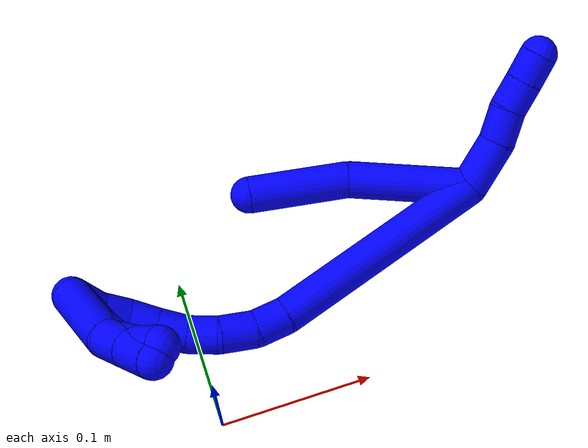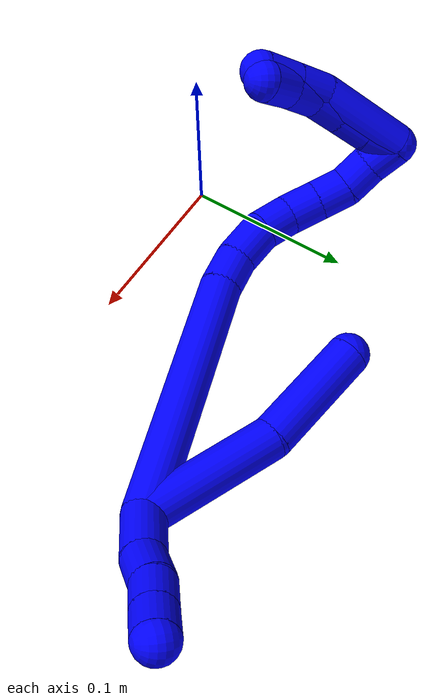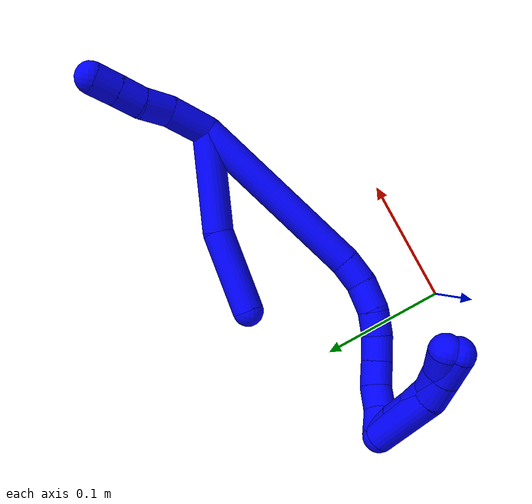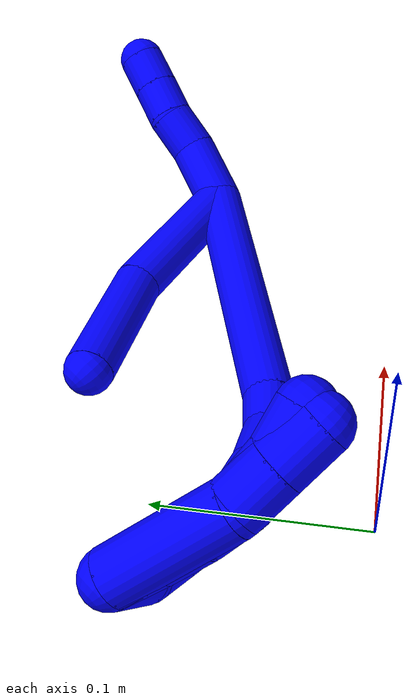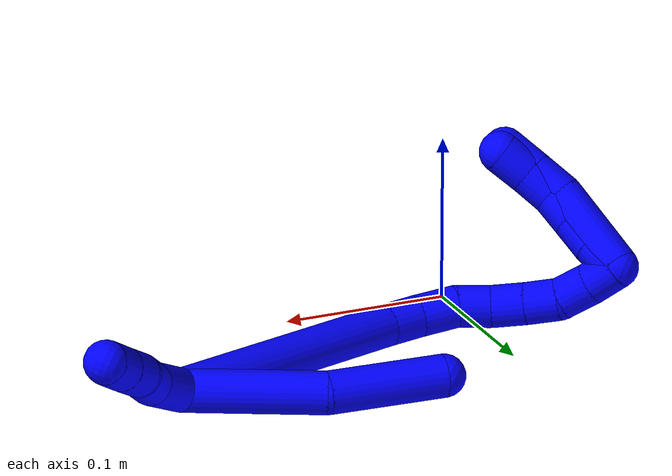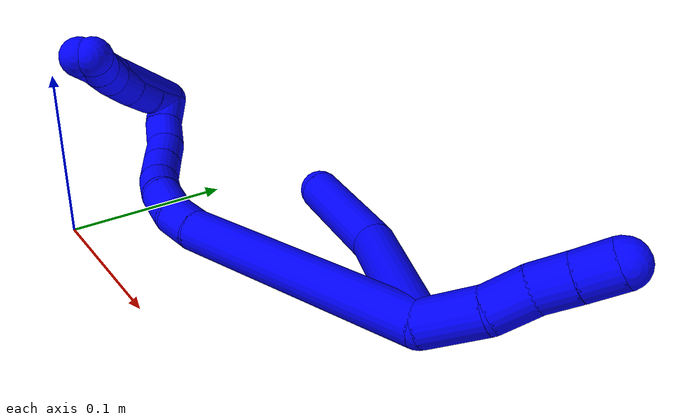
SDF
<sdf version="1.7">
 <world name="default">
  <model name="1">
   <static>0</static>
   <link name="1">
    <collision name="collision-cylinder-e_1_2_8">
     <pose>-0.006073 -0.015687 0.03742 0.396972 -0.148562 -0.029934</pose>
     <geometry><cylinder><radius>0.0125</radius><length>0.082054</length></cylinder></geometry>
     <surface>
      <friction><ode><mu>1.16</mu><mu2>1.16</mu2><slip1>0</slip1><slip2>0</slip2></ode></friction>
      <contact><ode><kp>1e+06</kp><kd>1</kd><max_vel>0</max_vel><min_depth>0.001</min_depth></ode></contact>
     </surface>
    </collision>
    <visual name="visual-cylinder-e_1_2_8">
     <pose>-0.006073 -0.015687 0.03742 0.396972 -0.148562 -0.029934</pose>
     <geometry><cylinder><radius>0.0125</radius><length>0.082054</length></cylinder></geometry>
     <material><ambient>0 0 1 1</ambient></material>
    </visual>
    <collision name="collision-cylinder-e_2_8_6">
     <pose>-0.024246 -0.048377 0.101648 0.565184 -0.364179 -0.106827</pose>
     <geometry><cylinder><radius>0.0125</radius><length>0.067946</length></cylinder></geometry>
     <surface>
      <friction><ode><mu>1.16</mu><mu2>1.16</mu2><slip1>0</slip1><slip2>0</slip2></ode></friction>
      <contact><ode><kp>1e+06</kp><kd>1</kd><max_vel>0</max_vel><min_depth>0.001</min_depth></ode></contact>
     </surface>
    </collision>
    <visual name="visual-cylinder-e_2_8_6">
     <pose>-0.024246 -0.048377 0.101648 0.565184 -0.364179 -0.106827</pose>
     <geometry><cylinder><radius>0.0125</radius><length>0.067946</length></cylinder></geometry>
     <material><ambient>0 0 1 1</ambient></material>
    </visual>
    <collision name="collision-cylinder-e_1_2_9">
     <pose>0.016643 0.0004 -0.006115 -3.0763 1.21799 -3.04801</pose>
     <geometry><cylinder><radius>0.0125</radius><length>0.035471</length></cylinder></geometry>
     <surface>
      <friction><ode><mu>1.16</mu><mu2>1.16</mu2><slip1>0</slip1><slip2>0</slip2></ode></friction>
      <contact><ode><kp>1e+06</kp><kd>1</kd><max_vel>0</max_vel><min_depth>0.001</min_depth></ode></contact>
     </surface>
    </collision>
    <visual name="visual-cylinder-e_1_2_9">
     <pose>0.016643 0.0004 -0.006115 -3.0763 1.21799 -3.04801</pose>
     <geometry><cylinder><radius>0.0125</radius><length>0.035471</length></cylinder></geometry>
     <material><ambient>0 0 1 1</ambient></material>
    </visual>
    <collision name="collision-cylinder-e_2_9_10">
     <pose>0.04472 -0.000945 -0.014169 2.40873 1.34651 2.24465</pose>
     <geometry><cylinder><radius>0.0125</radius><length>0.023456</length></cylinder></geometry>
     <surface>
      <friction><ode><mu>1.16</mu><mu2>1.16</mu2><slip1>0</slip1><slip2>0</slip2></ode></friction>
      <contact><ode><kp>1e+06</kp><kd>1</kd><max_vel>0</max_vel><min_depth>0.001</min_depth></ode></contact>
     </surface>
    </collision>
    <visual name="visual-cylinder-e_2_9_10">
     <pose>0.04472 -0.000945 -0.014169 2.40873 1.34651 2.24465</pose>
     <geometry><cylinder><radius>0.0125</radius><length>0.023456</length></cylinder></geometry>
     <material><ambient>0 0 1 1</ambient></material>
    </visual>
    <collision name="collision-cylinder-e_3_10_11">
     <pose>0.06588 -0.003092 -0.019617 3.02769 1.22244 2.97922</pose>
     <geometry><cylinder><radius>0.0125</radius><length>0.020693</length></cylinder></geometry>
     <surface>
      <friction><ode><mu>1.16</mu><mu2>1.16</mu2><slip1>0</slip1><slip2>0</slip2></ode></friction>
      <contact><ode><kp>1e+06</kp><kd>1</kd><max_vel>0</max_vel><min_depth>0.001</min_depth></ode></contact>
     </surface>
    </collision>
    <visual name="visual-cylinder-e_3_10_11">
     <pose>0.06588 -0.003092 -0.019617 3.02769 1.22244 2.97922</pose>
     <geometry><cylinder><radius>0.0125</radius><length>0.020693</length></cylinder></geometry>
     <material><ambient>0 0 1 1</ambient></material>
    </visual>
    <collision name="collision-cylinder-e_4_11_5">
     <pose>0.085227 -0.00409 -0.026426 2.9629 1.23535 2.89071</pose>
     <geometry><cylinder><radius>0.0125</radius><length>0.02038</length></cylinder></geometry>
     <surface>
      <friction><ode><mu>1.16</mu><mu2>1.16</mu2><slip1>0</slip1><slip2>0</slip2></ode></friction>
      <contact><ode><kp>1e+06</kp><kd>1</kd><max_vel>0</max_vel><min_depth>0.001</min_depth></ode></contact>
     </surface>
    </collision>
    <visual name="visual-cylinder-e_4_11_5">
     <pose>0.085227 -0.00409 -0.026426 2.9629 1.23535 2.89071</pose>
     <geometry><cylinder><radius>0.0125</radius><length>0.02038</length></cylinder></geometry>
     <material><ambient>0 0 1 1</ambient></material>
    </visual>
    <collision name="collision-cylinder-e_1_2_12">
     <pose>-0.054061 -0.037152 0.039281 0.757547 -0.785342 -0.326742</pose>
     <geometry><cylinder><radius>0.0125</radius><length>0.152917</length></cylinder></geometry>
     <surface>
      <friction><ode><mu>1.16</mu><mu2>1.16</mu2><slip1>0</slip1><slip2>0</slip2></ode></friction>
      <contact><ode><kp>1e+06</kp><kd>1</kd><max_vel>0</max_vel><min_depth>0.001</min_depth></ode></contact>
     </surface>
    </collision>
    <visual name="visual-cylinder-e_1_2_12">
     <pose>-0.054061 -0.037152 0.039281 0.757547 -0.785342 -0.326742</pose>
     <geometry><cylinder><radius>0.0125</radius><length>0.152917</length></cylinder></geometry>
     <material><ambient>0 0 1 1</ambient></material>
    </visual>
    <collision name="collision-cylinder-e_2_12_13">
     <pose>-0.114299 -0.080201 0.085305 0.718607 -0.603645 -0.232822</pose>
     <geometry><cylinder><radius>0.0125</radius><length>0.021762</length></cylinder></geometry>
     <surface>
      <friction><ode><mu>1.16</mu><mu2>1.16</mu2><slip1>0</slip1><slip2>0</slip2></ode></friction>
      <contact><ode><kp>1e+06</kp><kd>1</kd><max_vel>0</max_vel><min_depth>0.001</min_depth></ode></contact>
     </surface>
    </collision>
    <visual name="visual-cylinder-e_2_12_13">
     <pose>-0.114299 -0.080201 0.085305 0.718607 -0.603645 -0.232822</pose>
     <geometry><cylinder><radius>0.0125</radius><length>0.021762</length></cylinder></geometry>
     <material><ambient>0 0 1 1</ambient></material>
    </visual>
    <collision name="collision-cylinder-e_3_13_14">
     <pose>-0.124503 -0.093139 0.100866 0.673788 -0.342822 -0.121114</pose>
     <geometry><cylinder><radius>0.0125</radius><length>0.023962</length></cylinder></geometry>
     <surface>
      <friction><ode><mu>1.16</mu><mu2>1.16</mu2><slip1>0</slip1><slip2>0</slip2></ode></friction>
      <contact><ode><kp>1e+06</kp><kd>1</kd><max_vel>0</max_vel><min_depth>0.001</min_depth></ode></contact>
     </surface>
    </collision>
    <visual name="visual-cylinder-e_3_13_14">
     <pose>-0.124503 -0.093139 0.100866 0.673788 -0.342822 -0.121114</pose>
     <geometry><cylinder><radius>0.0125</radius><length>0.023962</length></cylinder></geometry>
     <material><ambient>0 0 1 1</ambient></material>
    </visual>
    <collision name="collision-cylinder-e_4_14_15">
     <pose>-0.130581 -0.104159 0.118845 0.40976 -0.202529 -0.042223</pose>
     <geometry><cylinder><radius>0.0125</radius><length>0.020393</length></cylinder></geometry>
     <surface>
      <friction><ode><mu>1.16</mu><mu2>1.16</mu2><slip1>0</slip1><slip2>0</slip2></ode></friction>
      <contact><ode><kp>1e+06</kp><kd>1</kd><max_vel>0</max_vel><min_depth>0.001</min_depth></ode></contact>
     </surface>
    </collision>
    <visual name="visual-cylinder-e_4_14_15">
     <pose>-0.130581 -0.104159 0.118845 0.40976 -0.202529 -0.042223</pose>
     <geometry><cylinder><radius>0.0125</radius><length>0.020393</length></cylinder></geometry>
     <material><ambient>0 0 1 1</ambient></material>
    </visual>
    <collision name="collision-cylinder-e_5_15_16">
     <pose>-0.132158 -0.113063 0.137091 0.496801 0.045885 0.01164</pose>
     <geometry><cylinder><radius>0.0125</radius><length>0.020689</length></cylinder></geometry>
     <surface>
      <friction><ode><mu>1.16</mu><mu2>1.16</mu2><slip1>0</slip1><slip2>0</slip2></ode></friction>
      <contact><ode><kp>1e+06</kp><kd>1</kd><max_vel>0</max_vel><min_depth>0.001</min_depth></ode></contact>
     </surface>
    </collision>
    <visual name="visual-cylinder-e_5_15_16">
     <pose>-0.132158 -0.113063 0.137091 0.496801 0.045885 0.01164</pose>
     <geometry><cylinder><radius>0.0125</radius><length>0.020689</length></cylinder></geometry>
     <material><ambient>0 0 1 1</ambient></material>
    </visual>
    <collision name="collision-cylinder-e_6_16_17">
     <pose>-0.130665 -0.123132 0.154729 0.541399 0.101675 0.028239</pose>
     <geometry><cylinder><radius>0.0125</radius><length>0.020066</length></cylinder></geometry>
     <surface>
      <friction><ode><mu>1.16</mu><mu2>1.16</mu2><slip1>0</slip1><slip2>0</slip2></ode></friction>
      <contact><ode><kp>1e+06</kp><kd>1</kd><max_vel>0</max_vel><min_depth>0.001</min_depth></ode></contact>
     </surface>
    </collision>
    <visual name="visual-cylinder-e_6_16_17">
     <pose>-0.130665 -0.123132 0.154729 0.541399 0.101675 0.028239</pose>
     <geometry><cylinder><radius>0.0125</radius><length>0.020066</length></cylinder></geometry>
     <material><ambient>0 0 1 1</ambient></material>
    </visual>
    <collision name="collision-cylinder-e_7_17_18">
     <pose>-0.129018 -0.135996 0.16967 0.879624 0.062672 0.029498</pose>
     <geometry><cylinder><radius>0.0125</radius><length>0.02008</length></cylinder></geometry>
     <surface>
      <friction><ode><mu>1.16</mu><mu2>1.16</mu2><slip1>0</slip1><slip2>0</slip2></ode></friction>
      <contact><ode><kp>1e+06</kp><kd>1</kd><max_vel>0</max_vel><min_depth>0.001</min_depth></ode></contact>
     </surface>
    </collision>
    <visual name="visual-cylinder-e_7_17_18">
     <pose>-0.129018 -0.135996 0.16967 0.879624 0.062672 0.029498</pose>
     <geometry><cylinder><radius>0.0125</radius><length>0.02008</length></cylinder></geometry>
     <material><ambient>0 0 1 1</ambient></material>
    </visual>
    <collision name="collision-cylinder-e_8_18_1">
     <pose>-0.125007 -0.151423 0.181578 0.949136 0.342673 0.177317</pose>
     <geometry><cylinder><radius>0.0125</radius><length>0.020132</length></cylinder></geometry>
     <surface>
      <friction><ode><mu>1.16</mu><mu2>1.16</mu2><slip1>0</slip1><slip2>0</slip2></ode></friction>
      <contact><ode><kp>1e+06</kp><kd>1</kd><max_vel>0</max_vel><min_depth>0.001</min_depth></ode></contact>
     </surface>
    </collision>
    <visual name="visual-cylinder-e_8_18_1">
     <pose>-0.125007 -0.151423 0.181578 0.949136 0.342673 0.177317</pose>
     <geometry><cylinder><radius>0.0125</radius><length>0.020132</length></cylinder></geometry>
     <material><ambient>0 0 1 1</ambient></material>
    </visual>
    <collision name="collision-cylinder-e_1_1_19">
     <pose>-0.129523 -0.171607 0.163161 2.66112 -0.284653 -1.05857</pose>
     <geometry><cylinder><radius>0.0125</radius><length>0.056253</length></cylinder></geometry>
     <surface>
      <friction><ode><mu>1.16</mu><mu2>1.16</mu2><slip1>0</slip1><slip2>0</slip2></ode></friction>
      <contact><ode><kp>1e+06</kp><kd>1</kd><max_vel>0</max_vel><min_depth>0.001</min_depth></ode></contact>
     </surface>
    </collision>
    <visual name="visual-cylinder-e_1_1_19">
     <pose>-0.129523 -0.171607 0.163161 2.66112 -0.284653 -1.05857</pose>
     <geometry><cylinder><radius>0.0125</radius><length>0.056253</length></cylinder></geometry>
     <material><ambient>0 0 1 1</ambient></material>
    </visual>
    <collision name="collision-cylinder-e_2_19_20">
     <pose>-0.138008 -0.187035 0.128966 2.86144 -0.054886 -0.384545</pose>
     <geometry><cylinder><radius>0.0125</radius><length>0.021379</length></cylinder></geometry>
     <surface>
      <friction><ode><mu>1.16</mu><mu2>1.16</mu2><slip1>0</slip1><slip2>0</slip2></ode></friction>
      <contact><ode><kp>1e+06</kp><kd>1</kd><max_vel>0</max_vel><min_depth>0.001</min_depth></ode></contact>
     </surface>
    </collision>
    <visual name="visual-cylinder-e_2_19_20">
     <pose>-0.138008 -0.187035 0.128966 2.86144 -0.054886 -0.384545</pose>
     <geometry><cylinder><radius>0.0125</radius><length>0.021379</length></cylinder></geometry>
     <material><ambient>0 0 1 1</ambient></material>
    </visual>
    <collision name="collision-cylinder-e_3_20_4">
     <pose>-0.139199 -0.192984 0.107951 2.86991 -0.054074 -0.390666</pose>
     <geometry><cylinder><radius>0.0125</radius><length>0.022368</length></cylinder></geometry>
     <surface>
      <friction><ode><mu>1.16</mu><mu2>1.16</mu2><slip1>0</slip1><slip2>0</slip2></ode></friction>
      <contact><ode><kp>1e+06</kp><kd>1</kd><max_vel>0</max_vel><min_depth>0.001</min_depth></ode></contact>
     </surface>
    </collision>
    <visual name="visual-cylinder-e_3_20_4">
     <pose>-0.139199 -0.192984 0.107951 2.86991 -0.054074 -0.390666</pose>
     <geometry><cylinder><radius>0.0125</radius><length>0.022368</length></cylinder></geometry>
     <material><ambient>0 0 1 1</ambient></material>
    </visual>
    <collision name="collision-cylinder-e_1_1_21">
     <pose>-0.124984 -0.162024 0.178136 2.82934 -0.342575 -1.665</pose>
     <geometry><cylinder><radius>0.0125</radius><length>0.02</length></cylinder></geometry>
     <surface>
      <friction><ode><mu>1.16</mu><mu2>1.16</mu2><slip1>0</slip1><slip2>0</slip2></ode></friction>
      <contact><ode><kp>1e+06</kp><kd>1</kd><max_vel>0</max_vel><min_depth>0.001</min_depth></ode></contact>
     </surface>
    </collision>
    <visual name="visual-cylinder-e_1_1_21">
     <pose>-0.124984 -0.162024 0.178136 2.82934 -0.342575 -1.665</pose>
     <geometry><cylinder><radius>0.0125</radius><length>0.02</length></cylinder></geometry>
     <material><ambient>0 0 1 1</ambient></material>
    </visual>
    <collision name="collision-cylinder-e_2_21_22">
     <pose>-0.131252 -0.169176 0.160605 2.68028 -0.295136 -1.12865</pose>
     <geometry><cylinder><radius>0.0125</radius><length>0.02</length></cylinder></geometry>
     <surface>
      <friction><ode><mu>1.16</mu><mu2>1.16</mu2><slip1>0</slip1><slip2>0</slip2></ode></friction>
      <contact><ode><kp>1e+06</kp><kd>1</kd><max_vel>0</max_vel><min_depth>0.001</min_depth></ode></contact>
     </surface>
    </collision>
    <visual name="visual-cylinder-e_2_21_22">
     <pose>-0.131252 -0.169176 0.160605 2.68028 -0.295136 -1.12865</pose>
     <geometry><cylinder><radius>0.0125</radius><length>0.02</length></cylinder></geometry>
     <material><ambient>0 0 1 1</ambient></material>
    </visual>
    <collision name="collision-cylinder-e_3_22_23">
     <pose>-0.136032 -0.177797 0.143236 2.68145 -0.188268 -0.766356</pose>
     <geometry><cylinder><radius>0.0125</radius><length>0.02</length></cylinder></geometry>
     <surface>
      <friction><ode><mu>1.16</mu><mu2>1.16</mu2><slip1>0</slip1><slip2>0</slip2></ode></friction>
      <contact><ode><kp>1e+06</kp><kd>1</kd><max_vel>0</max_vel><min_depth>0.001</min_depth></ode></contact>
     </surface>
    </collision>
    <visual name="visual-cylinder-e_3_22_23">
     <pose>-0.136032 -0.177797 0.143236 2.68145 -0.188268 -0.766356</pose>
     <geometry><cylinder><radius>0.0125</radius><length>0.02</length></cylinder></geometry>
     <material><ambient>0 0 1 1</ambient></material>
    </visual>
    <collision name="collision-cylinder-e_4_23_24">
     <pose>-0.13733 -0.185028 0.124872 2.85013 0.057405 0.386344</pose>
     <geometry><cylinder><radius>0.0125</radius><length>0.02</length></cylinder></geometry>
     <surface>
      <friction><ode><mu>1.16</mu><mu2>1.16</mu2><slip1>0</slip1><slip2>0</slip2></ode></friction>
      <contact><ode><kp>1e+06</kp><kd>1</kd><max_vel>0</max_vel><min_depth>0.001</min_depth></ode></contact>
     </surface>
    </collision>
    <visual name="visual-cylinder-e_4_23_24">
     <pose>-0.13733 -0.185028 0.124872 2.85013 0.057405 0.386344</pose>
     <geometry><cylinder><radius>0.0125</radius><length>0.02</length></cylinder></geometry>
     <material><ambient>0 0 1 1</ambient></material>
    </visual>
    <collision name="collision-cylinder-e_5_24_3">
     <pose>-0.13437 -0.190384 0.105922 2.88266 0.240957 1.49817</pose>
     <geometry><cylinder><radius>0.0125</radius><length>0.02</length></cylinder></geometry>
     <surface>
      <friction><ode><mu>1.16</mu><mu2>1.16</mu2><slip1>0</slip1><slip2>0</slip2></ode></friction>
      <contact><ode><kp>1e+06</kp><kd>1</kd><max_vel>0</max_vel><min_depth>0.001</min_depth></ode></contact>
     </surface>
    </collision>
    <visual name="visual-cylinder-e_5_24_3">
     <pose>-0.13437 -0.190384 0.105922 2.88266 0.240957 1.49817</pose>
     <geometry><cylinder><radius>0.0125</radius><length>0.02</length></cylinder></geometry>
     <material><ambient>0 0 1 1</ambient></material>
    </visual>
    <collision name="collision-sphere-3">
     <pose>-0.131983 -0.19287 0.096535 0 -0 0</pose>
     <geometry><sphere><radius>0.0125</radius></sphere></geometry>
     <surface>
      <friction><ode><mu>1.16</mu><mu2>1.16</mu2><slip1>0</slip1><slip2>0</slip2></ode></friction>
      <contact><ode><kp>1e+06</kp><kd>1</kd><max_vel>0</max_vel><min_depth>0.001</min_depth></ode></contact>
     </surface>
    </collision>
    <visual name="visual-sphere-3">
     <pose>-0.131983 -0.19287 0.096535 0 -0 0</pose>
     <geometry><sphere><radius>0.0125</radius></sphere></geometry>
     <material><ambient>0 0 1 1</ambient></material>
    </visual>
    <collision name="collision-sphere-24">
     <pose>-0.136756 -0.187897 0.11531 0 -0 0</pose>
     <geometry><sphere><radius>0.0125</radius></sphere></geometry>
     <surface>
      <friction><ode><mu>1.16</mu><mu2>1.16</mu2><slip1>0</slip1><slip2>0</slip2></ode></friction>
      <contact><ode><kp>1e+06</kp><kd>1</kd><max_vel>0</max_vel><min_depth>0.001</min_depth></ode></contact>
     </surface>
    </collision>
    <visual name="visual-sphere-24">
     <pose>-0.136756 -0.187897 0.11531 0 -0 0</pose>
     <geometry><sphere><radius>0.0125</radius></sphere></geometry>
     <material><ambient>0 0 1 1</ambient></material>
    </visual>
    <collision name="collision-sphere-23">
     <pose>-0.137904 -0.182159 0.134435 0 -0 0</pose>
     <geometry><sphere><radius>0.0125</radius></sphere></geometry>
     <surface>
      <friction><ode><mu>1.16</mu><mu2>1.16</mu2><slip1>0</slip1><slip2>0</slip2></ode></friction>
      <contact><ode><kp>1e+06</kp><kd>1</kd><max_vel>0</max_vel><min_depth>0.001</min_depth></ode></contact>
     </surface>
    </collision>
    <visual name="visual-sphere-23">
     <pose>-0.137904 -0.182159 0.134435 0 -0 0</pose>
     <geometry><sphere><radius>0.0125</radius></sphere></geometry>
     <material><ambient>0 0 1 1</ambient></material>
    </visual>
    <collision name="collision-sphere-22">
     <pose>-0.13416 -0.173435 0.152038 0 -0 0</pose>
     <geometry><sphere><radius>0.0125</radius></sphere></geometry>
     <surface>
      <friction><ode><mu>1.16</mu><mu2>1.16</mu2><slip1>0</slip1><slip2>0</slip2></ode></friction>
      <contact><ode><kp>1e+06</kp><kd>1</kd><max_vel>0</max_vel><min_depth>0.001</min_depth></ode></contact>
     </surface>
    </collision>
    <visual name="visual-sphere-22">
     <pose>-0.13416 -0.173435 0.152038 0 -0 0</pose>
     <geometry><sphere><radius>0.0125</radius></sphere></geometry>
     <material><ambient>0 0 1 1</ambient></material>
    </visual>
    <collision name="collision-sphere-21">
     <pose>-0.128343 -0.164917 0.169173 0 -0 0</pose>
     <geometry><sphere><radius>0.0125</radius></sphere></geometry>
     <surface>
      <friction><ode><mu>1.16</mu><mu2>1.16</mu2><slip1>0</slip1><slip2>0</slip2></ode></friction>
      <contact><ode><kp>1e+06</kp><kd>1</kd><max_vel>0</max_vel><min_depth>0.001</min_depth></ode></contact>
     </surface>
    </collision>
    <visual name="visual-sphere-21">
     <pose>-0.128343 -0.164917 0.169173 0 -0 0</pose>
     <geometry><sphere><radius>0.0125</radius></sphere></geometry>
     <material><ambient>0 0 1 1</ambient></material>
    </visual>
    <collision name="collision-sphere-4">
     <pose>-0.139804 -0.19598 0.097193 0 -0 0</pose>
     <geometry><sphere><radius>0.0125</radius></sphere></geometry>
     <surface>
      <friction><ode><mu>1.16</mu><mu2>1.16</mu2><slip1>0</slip1><slip2>0</slip2></ode></friction>
      <contact><ode><kp>1e+06</kp><kd>1</kd><max_vel>0</max_vel><min_depth>0.001</min_depth></ode></contact>
     </surface>
    </collision>
    <visual name="visual-sphere-4">
     <pose>-0.139804 -0.19598 0.097193 0 -0 0</pose>
     <geometry><sphere><radius>0.0125</radius></sphere></geometry>
     <material><ambient>0 0 1 1</ambient></material>
    </visual>
    <collision name="collision-sphere-20">
     <pose>-0.138595 -0.189987 0.118709 0 -0 0</pose>
     <geometry><sphere><radius>0.0125</radius></sphere></geometry>
     <surface>
      <friction><ode><mu>1.16</mu><mu2>1.16</mu2><slip1>0</slip1><slip2>0</slip2></ode></friction>
      <contact><ode><kp>1e+06</kp><kd>1</kd><max_vel>0</max_vel><min_depth>0.001</min_depth></ode></contact>
     </surface>
    </collision>
    <visual name="visual-sphere-20">
     <pose>-0.138595 -0.189987 0.118709 0 -0 0</pose>
     <geometry><sphere><radius>0.0125</radius></sphere></geometry>
     <material><ambient>0 0 1 1</ambient></material>
    </visual>
    <collision name="collision-sphere-11">
     <pose>0.075605 -0.003493 -0.023125 0 -0 0</pose>
     <geometry><sphere><radius>0.0125</radius></sphere></geometry>
     <surface>
      <friction><ode><mu>1.16</mu><mu2>1.16</mu2><slip1>0</slip1><slip2>0</slip2></ode></friction>
      <contact><ode><kp>1e+06</kp><kd>1</kd><max_vel>0</max_vel><min_depth>0.001</min_depth></ode></contact>
     </surface>
    </collision>
    <visual name="visual-sphere-11">
     <pose>0.075605 -0.003493 -0.023125 0 -0 0</pose>
     <geometry><sphere><radius>0.0125</radius></sphere></geometry>
     <material><ambient>0 0 1 1</ambient></material>
    </visual>
    <collision name="collision-sphere-10">
     <pose>0.056155 -0.002691 -0.016108 0 -0 0</pose>
     <geometry><sphere><radius>0.0125</radius></sphere></geometry>
     <surface>
      <friction><ode><mu>1.16</mu><mu2>1.16</mu2><slip1>0</slip1><slip2>0</slip2></ode></friction>
      <contact><ode><kp>1e+06</kp><kd>1</kd><max_vel>0</max_vel><min_depth>0.001</min_depth></ode></contact>
     </surface>
    </collision>
    <visual name="visual-sphere-10">
     <pose>0.056155 -0.002691 -0.016108 0 -0 0</pose>
     <geometry><sphere><radius>0.0125</radius></sphere></geometry>
     <material><ambient>0 0 1 1</ambient></material>
    </visual>
    <collision name="collision-sphere-6">
     <pose>-0.036347 -0.065378 0.128456 0 -0 0</pose>
     <geometry><sphere><radius>0.0125</radius></sphere></geometry>
     <surface>
      <friction><ode><mu>1.16</mu><mu2>1.16</mu2><slip1>0</slip1><slip2>0</slip2></ode></friction>
      <contact><ode><kp>1e+06</kp><kd>1</kd><max_vel>0</max_vel><min_depth>0.001</min_depth></ode></contact>
     </surface>
    </collision>
    <visual name="visual-sphere-6">
     <pose>-0.036347 -0.065378 0.128456 0 -0 0</pose>
     <geometry><sphere><radius>0.0125</radius></sphere></geometry>
     <material><ambient>0 0 1 1</ambient></material>
    </visual>
    <collision name="collision-sphere-9">
     <pose>0.033286 0.0008 -0.01223 0 -0 0</pose>
     <geometry><sphere><radius>0.0125</radius></sphere></geometry>
     <surface>
      <friction><ode><mu>1.16</mu><mu2>1.16</mu2><slip1>0</slip1><slip2>0</slip2></ode></friction>
      <contact><ode><kp>1e+06</kp><kd>1</kd><max_vel>0</max_vel><min_depth>0.001</min_depth></ode></contact>
     </surface>
    </collision>
    <visual name="visual-sphere-9">
     <pose>0.033286 0.0008 -0.01223 0 -0 0</pose>
     <geometry><sphere><radius>0.0125</radius></sphere></geometry>
     <material><ambient>0 0 1 1</ambient></material>
    </visual>
    <collision name="collision-sphere-2">
     <geometry><sphere><radius>0.0125</radius></sphere></geometry>
     <surface>
      <friction><ode><mu>1.16</mu><mu2>1.16</mu2><slip1>0</slip1><slip2>0</slip2></ode></friction>
      <contact><ode><kp>1e+06</kp><kd>1</kd><max_vel>0</max_vel><min_depth>0.001</min_depth></ode></contact>
     </surface>
    </collision>
    <visual name="visual-sphere-2">
     <geometry><sphere><radius>0.0125</radius></sphere></geometry>
     <material><ambient>0 0 1 1</ambient></material>
    </visual>
    <collision name="collision-sphere-19">
     <pose>-0.137422 -0.184084 0.139223 0 -0 0</pose>
     <geometry><sphere><radius>0.0125</radius></sphere></geometry>
     <surface>
      <friction><ode><mu>1.16</mu><mu2>1.16</mu2><slip1>0</slip1><slip2>0</slip2></ode></friction>
      <contact><ode><kp>1e+06</kp><kd>1</kd><max_vel>0</max_vel><min_depth>0.001</min_depth></ode></contact>
     </surface>
    </collision>
    <visual name="visual-sphere-19">
     <pose>-0.137422 -0.184084 0.139223 0 -0 0</pose>
     <geometry><sphere><radius>0.0125</radius></sphere></geometry>
     <material><ambient>0 0 1 1</ambient></material>
    </visual>
    <collision name="collision-sphere-8">
     <pose>-0.012145 -0.031375 0.074839 0 -0 0</pose>
     <geometry><sphere><radius>0.0125</radius></sphere></geometry>
     <surface>
      <friction><ode><mu>1.16</mu><mu2>1.16</mu2><slip1>0</slip1><slip2>0</slip2></ode></friction>
      <contact><ode><kp>1e+06</kp><kd>1</kd><max_vel>0</max_vel><min_depth>0.001</min_depth></ode></contact>
     </surface>
    </collision>
    <visual name="visual-sphere-8">
     <pose>-0.012145 -0.031375 0.074839 0 -0 0</pose>
     <geometry><sphere><radius>0.0125</radius></sphere></geometry>
     <material><ambient>0 0 1 1</ambient></material>
    </visual>
    <collision name="collision-sphere-5">
     <pose>0.094849 -0.004686 -0.029728 0 -0 0</pose>
     <geometry><sphere><radius>0.0125</radius></sphere></geometry>
     <surface>
      <friction><ode><mu>1.16</mu><mu2>1.16</mu2><slip1>0</slip1><slip2>0</slip2></ode></friction>
      <contact><ode><kp>1e+06</kp><kd>1</kd><max_vel>0</max_vel><min_depth>0.001</min_depth></ode></contact>
     </surface>
    </collision>
    <visual name="visual-sphere-5">
     <pose>0.094849 -0.004686 -0.029728 0 -0 0</pose>
     <geometry><sphere><radius>0.0125</radius></sphere></geometry>
     <material><ambient>0 0 1 1</ambient></material>
    </visual>
    <collision name="collision-sphere-12">
     <pose>-0.108123 -0.074304 0.078563 0 -0 0</pose>
     <geometry><sphere><radius>0.0125</radius></sphere></geometry>
     <surface>
      <friction><ode><mu>1.16</mu><mu2>1.16</mu2><slip1>0</slip1><slip2>0</slip2></ode></friction>
      <contact><ode><kp>1e+06</kp><kd>1</kd><max_vel>0</max_vel><min_depth>0.001</min_depth></ode></contact>
     </surface>
    </collision>
    <visual name="visual-sphere-12">
     <pose>-0.108123 -0.074304 0.078563 0 -0 0</pose>
     <geometry><sphere><radius>0.0125</radius></sphere></geometry>
     <material><ambient>0 0 1 1</ambient></material>
    </visual>
    <collision name="collision-sphere-13">
     <pose>-0.120476 -0.086098 0.092048 0 -0 0</pose>
     <geometry><sphere><radius>0.0125</radius></sphere></geometry>
     <surface>
      <friction><ode><mu>1.16</mu><mu2>1.16</mu2><slip1>0</slip1><slip2>0</slip2></ode></friction>
      <contact><ode><kp>1e+06</kp><kd>1</kd><max_vel>0</max_vel><min_depth>0.001</min_depth></ode></contact>
     </surface>
    </collision>
    <visual name="visual-sphere-13">
     <pose>-0.120476 -0.086098 0.092048 0 -0 0</pose>
     <geometry><sphere><radius>0.0125</radius></sphere></geometry>
     <material><ambient>0 0 1 1</ambient></material>
    </visual>
    <collision name="collision-sphere-14">
     <pose>-0.12853 -0.10018 0.109684 0 -0 0</pose>
     <geometry><sphere><radius>0.0125</radius></sphere></geometry>
     <surface>
      <friction><ode><mu>1.16</mu><mu2>1.16</mu2><slip1>0</slip1><slip2>0</slip2></ode></friction>
      <contact><ode><kp>1e+06</kp><kd>1</kd><max_vel>0</max_vel><min_depth>0.001</min_depth></ode></contact>
     </surface>
    </collision>
    <visual name="visual-sphere-14">
     <pose>-0.12853 -0.10018 0.109684 0 -0 0</pose>
     <geometry><sphere><radius>0.0125</radius></sphere></geometry>
     <material><ambient>0 0 1 1</ambient></material>
    </visual>
    <collision name="collision-sphere-15">
     <pose>-0.132632 -0.108138 0.128006 0 -0 0</pose>
     <geometry><sphere><radius>0.0125</radius></sphere></geometry>
     <surface>
      <friction><ode><mu>1.16</mu><mu2>1.16</mu2><slip1>0</slip1><slip2>0</slip2></ode></friction>
      <contact><ode><kp>1e+06</kp><kd>1</kd><max_vel>0</max_vel><min_depth>0.001</min_depth></ode></contact>
     </surface>
    </collision>
    <visual name="visual-sphere-15">
     <pose>-0.132632 -0.108138 0.128006 0 -0 0</pose>
     <geometry><sphere><radius>0.0125</radius></sphere></geometry>
     <material><ambient>0 0 1 1</ambient></material>
    </visual>
    <collision name="collision-sphere-16">
     <pose>-0.131683 -0.117988 0.146175 0 -0 0</pose>
     <geometry><sphere><radius>0.0125</radius></sphere></geometry>
     <surface>
      <friction><ode><mu>1.16</mu><mu2>1.16</mu2><slip1>0</slip1><slip2>0</slip2></ode></friction>
      <contact><ode><kp>1e+06</kp><kd>1</kd><max_vel>0</max_vel><min_depth>0.001</min_depth></ode></contact>
     </surface>
    </collision>
    <visual name="visual-sphere-16">
     <pose>-0.131683 -0.117988 0.146175 0 -0 0</pose>
     <geometry><sphere><radius>0.0125</radius></sphere></geometry>
     <material><ambient>0 0 1 1</ambient></material>
    </visual>
    <collision name="collision-sphere-17">
     <pose>-0.129647 -0.128275 0.163283 0 -0 0</pose>
     <geometry><sphere><radius>0.0125</radius></sphere></geometry>
     <surface>
      <friction><ode><mu>1.16</mu><mu2>1.16</mu2><slip1>0</slip1><slip2>0</slip2></ode></friction>
      <contact><ode><kp>1e+06</kp><kd>1</kd><max_vel>0</max_vel><min_depth>0.001</min_depth></ode></contact>
     </surface>
    </collision>
    <visual name="visual-sphere-17">
     <pose>-0.129647 -0.128275 0.163283 0 -0 0</pose>
     <geometry><sphere><radius>0.0125</radius></sphere></geometry>
     <material><ambient>0 0 1 1</ambient></material>
    </visual>
    <collision name="collision-sphere-18">
     <pose>-0.128389 -0.143716 0.176057 0 -0 0</pose>
     <geometry><sphere><radius>0.0125</radius></sphere></geometry>
     <surface>
      <friction><ode><mu>1.16</mu><mu2>1.16</mu2><slip1>0</slip1><slip2>0</slip2></ode></friction>
      <contact><ode><kp>1e+06</kp><kd>1</kd><max_vel>0</max_vel><min_depth>0.001</min_depth></ode></contact>
     </surface>
    </collision>
    <visual name="visual-sphere-18">
     <pose>-0.128389 -0.143716 0.176057 0 -0 0</pose>
     <geometry><sphere><radius>0.0125</radius></sphere></geometry>
     <material><ambient>0 0 1 1</ambient></material>
    </visual>
    <collision name="collision-sphere-1">
     <pose>-0.121625 -0.15913 0.1871 0 -0 0</pose>
     <geometry><sphere><radius>0.0125</radius></sphere></geometry>
     <surface>
      <friction><ode><mu>1.16</mu><mu2>1.16</mu2><slip1>0</slip1><slip2>0</slip2></ode></friction>
      <contact><ode><kp>1e+06</kp><kd>1</kd><max_vel>0</max_vel><min_depth>0.001</min_depth></ode></contact>
     </surface>
    </collision>
    <visual name="visual-sphere-1">
     <pose>-0.121625 -0.15913 0.1871 0 -0 0</pose>
     <geometry><sphere><radius>0.0125</radius></sphere></geometry>
     <material><ambient>0 0 1 1</ambient></material>
    </visual>
    <inertial>
     <pose>-0.067866 -0.083677 0.083728 0 -0 0</pose>
     <mass>0.75</mass>
     <inertia>
      <ixx>0.000203</ixx>
      <ixy>0</ixy>
      <ixz>0</ixz>
      <iyy>0.000221</iyy>
      <iyz>0</iyz>
      <izz>0.000437</izz>
     </inertia>
    </inertial>
   </link>
   <pose>0.205689 0.1005 0.013522 -1.93418 -0.384197 1.02209</pose>
  </model>
 </world>
</sdf>
